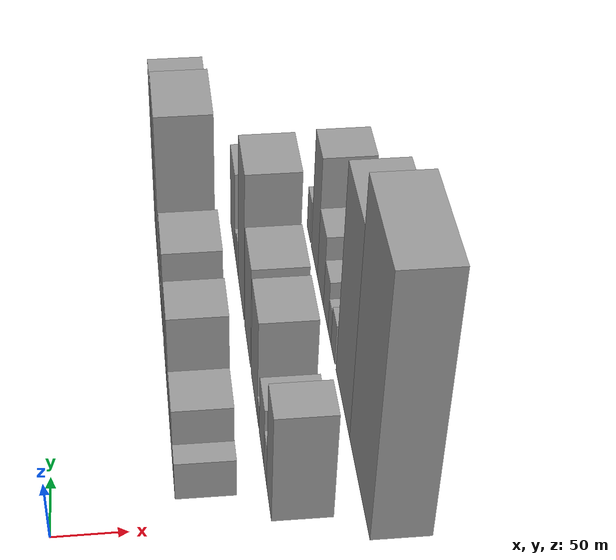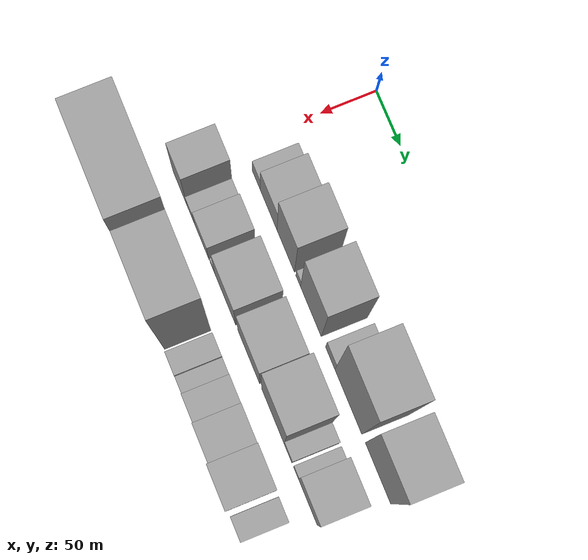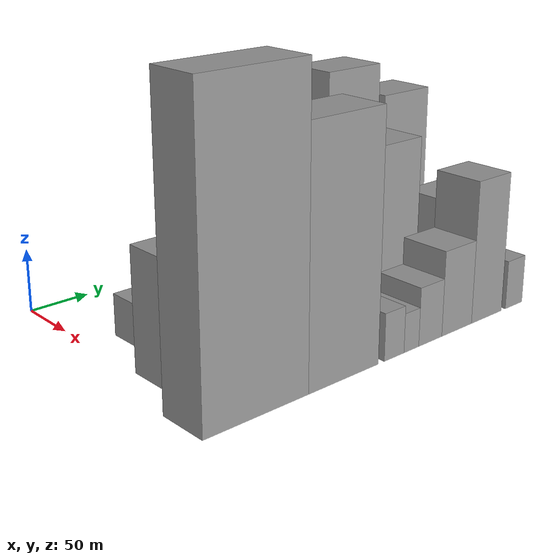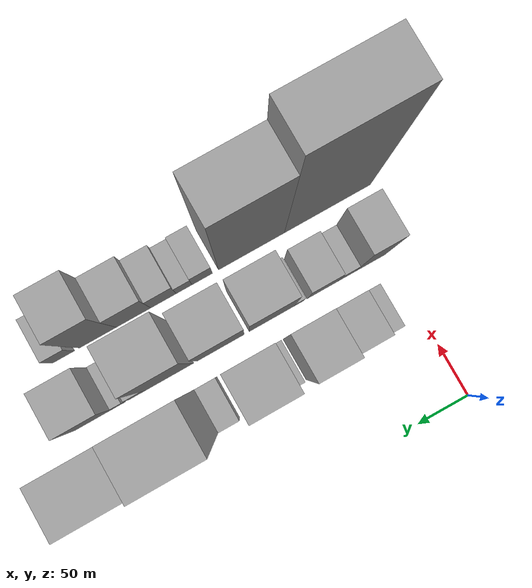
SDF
<sdf version="1.6">
 <world name="default">
  <model name="building_19">
   <static>1</static>
   <pose>100.0000 32.5690 0 0.000000 0.000000 0.000000</pose>
   <link name="link">
    <pose>0 0 16.50 0 0 0</pose>
    <collision name="collision"><geometry><box><size>40.0000 17.1172 33.0000</size></box></geometry></collision>
    <visual name="visual">
     <cast_shadows>0</cast_shadows>
     <geometry><box><size>40.0000 17.1172 33.0000</size></box></geometry>
     <material>
      <script>
       <uri>model://grey_wall/materials/scripts</uri>
       <uri>model://grey_wall/materials/textures</uri>
       <name>vrc/grey_wall</name>
      </script>
     </material>
    </visual>
   </link>
  </model>
  <model name="building_20">
   <static>1</static>
   <pose>100.0000 59.2023 0 0.000000 0.000000 0.000000</pose>
   <link name="link">
    <pose>0 0 31.50 0 0 0</pose>
    <collision name="collision"><geometry><box><size>40.0000 36.1495 63.0000</size></box></geometry></collision>
    <visual name="visual">
     <cast_shadows>0</cast_shadows>
     <geometry><box><size>40.0000 36.1495 63.0000</size></box></geometry>
     <material>
      <script>
       <uri>model://grey_wall/materials/scripts</uri>
       <uri>model://grey_wall/materials/textures</uri>
       <name>vrc/grey_wall</name>
      </script>
     </material>
    </visual>
   </link>
  </model>
  <model name="building_21">
   <static>1</static>
   <pose>100.0000 95.7717 0 0.000000 0.000000 0.000000</pose>
   <link name="link">
    <pose>0 0 54.00 0 0 0</pose>
    <collision name="collision"><geometry><box><size>40.0000 36.9893 108.0000</size></box></geometry></collision>
    <visual name="visual">
     <cast_shadows>0</cast_shadows>
     <geometry><box><size>40.0000 36.9893 108.0000</size></box></geometry>
     <material>
      <script>
       <uri>model://grey_wall/materials/scripts</uri>
       <uri>model://grey_wall/materials/textures</uri>
       <name>vrc/grey_wall</name>
      </script>
     </material>
    </visual>
   </link>
  </model>
  <model name="building_22">
   <static>1</static>
   <pose>100.0000 122.1732 0 0.000000 0.000000 0.000000</pose>
   <link name="link">
    <pose>0 0 12.00 0 0 0</pose>
    <collision name="collision"><geometry><box><size>40.0000 9.8138 24.0000</size></box></geometry></collision>
    <visual name="visual">
     <cast_shadows>0</cast_shadows>
     <geometry><box><size>40.0000 9.8138 24.0000</size></box></geometry>
     <material>
      <script>
       <uri>model://grey_wall/materials/scripts</uri>
       <uri>model://grey_wall/materials/textures</uri>
       <name>vrc/grey_wall</name>
      </script>
     </material>
    </visual>
   </link>
  </model>
  <model name="building_23">
   <static>1</static>
   <pose>100.0000 148.9118 0 0.000000 0.000000 0.000000</pose>
   <link name="link">
    <pose>0 0 60.00 0 0 0</pose>
    <collision name="collision"><geometry><box><size>40.0000 43.6633 120.0000</size></box></geometry></collision>
    <visual name="visual">
     <cast_shadows>0</cast_shadows>
     <geometry><box><size>40.0000 43.6633 120.0000</size></box></geometry>
     <material>
      <script>
       <uri>model://grey_wall/materials/scripts</uri>
       <uri>model://grey_wall/materials/textures</uri>
       <name>vrc/grey_wall</name>
      </script>
     </material>
    </visual>
   </link>
  </model>
  <model name="building_24">
   <static>1</static>
   <pose>100.0000 189.5372 0 0.000000 0.000000 0.000000</pose>
   <link name="link">
    <pose>0 0 16.50 0 0 0</pose>
    <collision name="collision"><geometry><box><size>40.0000 19.5876 33.0000</size></box></geometry></collision>
    <visual name="visual">
     <cast_shadows>0</cast_shadows>
     <geometry><box><size>40.0000 19.5876 33.0000</size></box></geometry>
     <material>
      <script>
       <uri>model://grey_wall/materials/scripts</uri>
       <uri>model://grey_wall/materials/textures</uri>
       <name>vrc/grey_wall</name>
      </script>
     </material>
    </visual>
   </link>
  </model>
  <model name="building_25">
   <static>1</static>
   <pose>100.0000 227.2445 0 0.000000 0.000000 0.000000</pose>
   <link name="link">
    <pose>0 0 88.50 0 0 0</pose>
    <collision name="collision"><geometry><box><size>40.0000 55.8271 177.0000</size></box></geometry></collision>
    <visual name="visual">
     <cast_shadows>0</cast_shadows>
     <geometry><box><size>40.0000 55.8271 177.0000</size></box></geometry>
     <material>
      <script>
       <uri>model://grey_wall/materials/scripts</uri>
       <uri>model://grey_wall/materials/textures</uri>
       <name>vrc/grey_wall</name>
      </script>
     </material>
    </visual>
   </link>
  </model>
  <model name="building_26">
   <static>1</static>
   <pose>100.0000 288.1482 0 0.000000 0.000000 0.000000</pose>
   <link name="link">
    <pose>0 0 75.00 0 0 0</pose>
    <collision name="collision"><geometry><box><size>40.0000 51.9804 150.0000</size></box></geometry></collision>
    <visual name="visual">
     <cast_shadows>0</cast_shadows>
     <geometry><box><size>40.0000 51.9804 150.0000</size></box></geometry>
     <material>
      <script>
       <uri>model://grey_wall/materials/scripts</uri>
       <uri>model://grey_wall/materials/textures</uri>
       <name>vrc/grey_wall</name>
      </script>
     </material>
    </visual>
   </link>
  </model>
  <model name="building_50">
   <static>1</static>
   <pose>160.0000 15.6681 0 0.000000 0.000000 0.000000</pose>
   <link name="link">
    <pose>0 0 46.50 0 0 0</pose>
    <collision name="collision"><geometry><box><size>40.0000 30.2656 93.0000</size></box></geometry></collision>
    <visual name="visual">
     <cast_shadows>0</cast_shadows>
     <geometry><box><size>40.0000 30.2656 93.0000</size></box></geometry>
     <material>
      <script>
       <uri>model://grey_wall/materials/scripts</uri>
       <uri>model://grey_wall/materials/textures</uri>
       <name>vrc/grey_wall</name>
      </script>
     </material>
    </visual>
   </link>
  </model>
  <model name="building_51">
   <static>1</static>
   <pose>160.0000 39.5752 0 0.000000 0.000000 0.000000</pose>
   <link name="link">
    <pose>0 0 16.50 0 0 0</pose>
    <collision name="collision"><geometry><box><size>40.0000 17.5487 33.0000</size></box></geometry></collision>
    <visual name="visual">
     <cast_shadows>0</cast_shadows>
     <geometry><box><size>40.0000 17.5487 33.0000</size></box></geometry>
     <material>
      <script>
       <uri>model://grey_wall/materials/scripts</uri>
       <uri>model://grey_wall/materials/textures</uri>
       <name>vrc/grey_wall</name>
      </script>
     </material>
    </visual>
   </link>
  </model>
  <model name="building_52">
   <static>1</static>
   <pose>160.0000 63.5712 0 0.000000 0.000000 0.000000</pose>
   <link name="link">
    <pose>0 0 25.50 0 0 0</pose>
    <collision name="collision"><geometry><box><size>40.0000 30.4431 51.0000</size></box></geometry></collision>
    <visual name="visual">
     <cast_shadows>0</cast_shadows>
     <geometry><box><size>40.0000 30.4431 51.0000</size></box></geometry>
     <material>
      <script>
       <uri>model://grey_wall/materials/scripts</uri>
       <uri>model://grey_wall/materials/textures</uri>
       <name>vrc/grey_wall</name>
      </script>
     </material>
    </visual>
   </link>
  </model>
  <model name="building_53">
   <static>1</static>
   <pose>160.0000 86.6166 0 0.000000 0.000000 0.000000</pose>
   <link name="link">
    <pose>0 0 10.50 0 0 0</pose>
    <collision name="collision"><geometry><box><size>40.0000 9.6478 21.0000</size></box></geometry></collision>
    <visual name="visual">
     <cast_shadows>0</cast_shadows>
     <geometry><box><size>40.0000 9.6478 21.0000</size></box></geometry>
     <material>
      <script>
       <uri>model://grey_wall/materials/scripts</uri>
       <uri>model://grey_wall/materials/textures</uri>
       <name>vrc/grey_wall</name>
      </script>
     </material>
    </visual>
   </link>
  </model>
  <model name="building_54">
   <static>1</static>
   <pose>160.0000 113.9087 0 0.000000 0.000000 0.000000</pose>
   <link name="link">
    <pose>0 0 43.50 0 0 0</pose>
    <collision name="collision"><geometry><box><size>40.0000 44.9363 87.0000</size></box></geometry></collision>
    <visual name="visual">
     <cast_shadows>0</cast_shadows>
     <geometry><box><size>40.0000 44.9363 87.0000</size></box></geometry>
     <material>
      <script>
       <uri>model://grey_wall/materials/scripts</uri>
       <uri>model://grey_wall/materials/textures</uri>
       <name>vrc/grey_wall</name>
      </script>
     </material>
    </visual>
   </link>
  </model>
  <model name="building_55">
   <static>1</static>
   <pose>160.0000 164.3432 0 0.000000 0.000000 0.000000</pose>
   <link name="link">
    <pose>0 0 45.00 0 0 0</pose>
    <collision name="collision"><geometry><box><size>40.0000 45.9327 90.0000</size></box></geometry></collision>
    <visual name="visual">
     <cast_shadows>0</cast_shadows>
     <geometry><box><size>40.0000 45.9327 90.0000</size></box></geometry>
     <material>
      <script>
       <uri>model://grey_wall/materials/scripts</uri>
       <uri>model://grey_wall/materials/textures</uri>
       <name>vrc/grey_wall</name>
      </script>
     </material>
    </visual>
   </link>
  </model>
  <model name="building_56">
   <static>1</static>
   <pose>160.0000 214.9504 0 0.000000 0.000000 0.000000</pose>
   <link name="link">
    <pose>0 0 66.00 0 0 0</pose>
    <collision name="collision"><geometry><box><size>40.0000 47.2818 132.0000</size></box></geometry></collision>
    <visual name="visual">
     <cast_shadows>0</cast_shadows>
     <geometry><box><size>40.0000 47.2818 132.0000</size></box></geometry>
     <material>
      <script>
       <uri>model://grey_wall/materials/scripts</uri>
       <uri>model://grey_wall/materials/textures</uri>
       <name>vrc/grey_wall</name>
      </script>
     </material>
    </visual>
   </link>
  </model>
  <model name="building_57">
   <static>1</static>
   <pose>160.0000 246.8419 0 0.000000 0.000000 0.000000</pose>
   <link name="link">
    <pose>0 0 15.00 0 0 0</pose>
    <collision name="collision"><geometry><box><size>40.0000 16.5011 30.0000</size></box></geometry></collision>
    <visual name="visual">
     <cast_shadows>0</cast_shadows>
     <geometry><box><size>40.0000 16.5011 30.0000</size></box></geometry>
     <material>
      <script>
       <uri>model://grey_wall/materials/scripts</uri>
       <uri>model://grey_wall/materials/textures</uri>
       <name>vrc/grey_wall</name>
      </script>
     </material>
    </visual>
   </link>
  </model>
  <model name="building_58">
   <static>1</static>
   <pose>160.0000 263.3674 0 0.000000 0.000000 0.000000</pose>
   <link name="link">
    <pose>0 0 12.00 0 0 0</pose>
    <collision name="collision"><geometry><box><size>40.0000 10.5499 24.0000</size></box></geometry></collision>
    <visual name="visual">
     <cast_shadows>0</cast_shadows>
     <geometry><box><size>40.0000 10.5499 24.0000</size></box></geometry>
     <material>
      <script>
       <uri>model://grey_wall/materials/scripts</uri>
       <uri>model://grey_wall/materials/textures</uri>
       <name>vrc/grey_wall</name>
      </script>
     </material>
    </visual>
   </link>
  </model>
  <model name="building_59">
   <static>1</static>
   <pose>160.0000 288.1356 0 0.000000 0.000000 0.000000</pose>
   <link name="link">
    <pose>0 0 37.50 0 0 0</pose>
    <collision name="collision"><geometry><box><size>40.0000 38.9865 75.0000</size></box></geometry></collision>
    <visual name="visual">
     <cast_shadows>0</cast_shadows>
     <geometry><box><size>40.0000 38.9865 75.0000</size></box></geometry>
     <material>
      <script>
       <uri>model://grey_wall/materials/scripts</uri>
       <uri>model://grey_wall/materials/textures</uri>
       <name>vrc/grey_wall</name>
      </script>
     </material>
    </visual>
   </link>
  </model>
  <model name="building_88">
   <static>1</static>
   <pose>220.0000 23.6230 0 0.000000 0.000000 0.000000</pose>
   <link name="link">
    <pose>0 0 111.00 0 0 0</pose>
    <collision name="collision"><geometry><box><size>40.0000 87.2723 222.0000</size></box></geometry></collision>
    <visual name="visual">
     <cast_shadows>0</cast_shadows>
     <geometry><box><size>40.0000 87.2723 222.0000</size></box></geometry>
     <material>
      <script>
       <uri>model://grey_wall/materials/scripts</uri>
       <uri>model://grey_wall/materials/textures</uri>
       <name>vrc/grey_wall</name>
      </script>
     </material>
    </visual>
   </link>
  </model>
  <model name="building_89">
   <static>1</static>
   <pose>220.0000 100.1741 0 0.000000 0.000000 0.000000</pose>
   <link name="link">
    <pose>0 0 91.50 0 0 0</pose>
    <collision name="collision"><geometry><box><size>40.0000 65.8298 183.0000</size></box></geometry></collision>
    <visual name="visual">
     <cast_shadows>0</cast_shadows>
     <geometry><box><size>40.0000 65.8298 183.0000</size></box></geometry>
     <material>
      <script>
       <uri>model://grey_wall/materials/scripts</uri>
       <uri>model://grey_wall/materials/textures</uri>
       <name>vrc/grey_wall</name>
      </script>
     </material>
    </visual>
   </link>
  </model>
  <model name="building_90">
   <static>1</static>
   <pose>220.0000 149.2088 0 0.000000 0.000000 0.000000</pose>
   <link name="link">
    <pose>0 0 18.00 0 0 0</pose>
    <collision name="collision"><geometry><box><size>40.0000 20.2397 36.0000</size></box></geometry></collision>
    <visual name="visual">
     <cast_shadows>0</cast_shadows>
     <geometry><box><size>40.0000 20.2397 36.0000</size></box></geometry>
     <material>
      <script>
       <uri>model://grey_wall/materials/scripts</uri>
       <uri>model://grey_wall/materials/textures</uri>
       <name>vrc/grey_wall</name>
      </script>
     </material>
    </visual>
   </link>
  </model>
  <model name="building_91">
   <static>1</static>
   <pose>220.0000 167.1469 0 0.000000 0.000000 0.000000</pose>
   <link name="link">
    <pose>0 0 15.00 0 0 0</pose>
    <collision name="collision"><geometry><box><size>40.0000 15.6365 30.0000</size></box></geometry></collision>
    <visual name="visual">
     <cast_shadows>0</cast_shadows>
     <geometry><box><size>40.0000 15.6365 30.0000</size></box></geometry>
     <material>
      <script>
       <uri>model://grey_wall/materials/scripts</uri>
       <uri>model://grey_wall/materials/textures</uri>
       <name>vrc/grey_wall</name>
      </script>
     </material>
    </visual>
   </link>
  </model>
  <model name="building_92">
   <static>1</static>
   <pose>220.0000 187.6049 0 0.000000 0.000000 0.000000</pose>
   <link name="link">
    <pose>0 0 22.50 0 0 0</pose>
    <collision name="collision"><geometry><box><size>40.0000 25.2794 45.0000</size></box></geometry></collision>
    <visual name="visual">
     <cast_shadows>0</cast_shadows>
     <geometry><box><size>40.0000 25.2794 45.0000</size></box></geometry>
     <material>
      <script>
       <uri>model://grey_wall/materials/scripts</uri>
       <uri>model://grey_wall/materials/textures</uri>
       <name>vrc/grey_wall</name>
      </script>
     </material>
    </visual>
   </link>
  </model>
  <model name="building_93">
   <static>1</static>
   <pose>220.0000 217.2761 0 0.000000 0.000000 0.000000</pose>
   <link name="link">
    <pose>0 0 33.00 0 0 0</pose>
    <collision name="collision"><geometry><box><size>40.0000 34.0630 66.0000</size></box></geometry></collision>
    <visual name="visual">
     <cast_shadows>0</cast_shadows>
     <geometry><box><size>40.0000 34.0630 66.0000</size></box></geometry>
     <material>
      <script>
       <uri>model://grey_wall/materials/scripts</uri>
       <uri>model://grey_wall/materials/textures</uri>
       <name>vrc/grey_wall</name>
      </script>
     </material>
    </visual>
   </link>
  </model>
  <model name="building_94">
   <static>1</static>
   <pose>220.0000 252.4501 0 0.000000 0.000000 0.000000</pose>
   <link name="link">
    <pose>0 0 55.50 0 0 0</pose>
    <collision name="collision"><geometry><box><size>40.0000 36.2849 111.0000</size></box></geometry></collision>
    <visual name="visual">
     <cast_shadows>0</cast_shadows>
     <geometry><box><size>40.0000 36.2849 111.0000</size></box></geometry>
     <material>
      <script>
       <uri>model://grey_wall/materials/scripts</uri>
       <uri>model://grey_wall/materials/textures</uri>
       <name>vrc/grey_wall</name>
      </script>
     </material>
    </visual>
   </link>
  </model>
  <model name="building_95">
   <static>1</static>
   <pose>220.0000 286.1060 0 0.000000 0.000000 0.000000</pose>
   <link name="link">
    <pose>0 0 19.50 0 0 0</pose>
    <collision name="collision"><geometry><box><size>40.0000 21.0269 39.0000</size></box></geometry></collision>
    <visual name="visual">
     <cast_shadows>0</cast_shadows>
     <geometry><box><size>40.0000 21.0269 39.0000</size></box></geometry>
     <material>
      <script>
       <uri>model://grey_wall/materials/scripts</uri>
       <uri>model://grey_wall/materials/textures</uri>
       <name>vrc/grey_wall</name>
      </script>
     </material>
    </visual>
   </link>
  </model>
 </world>
</sdf>
